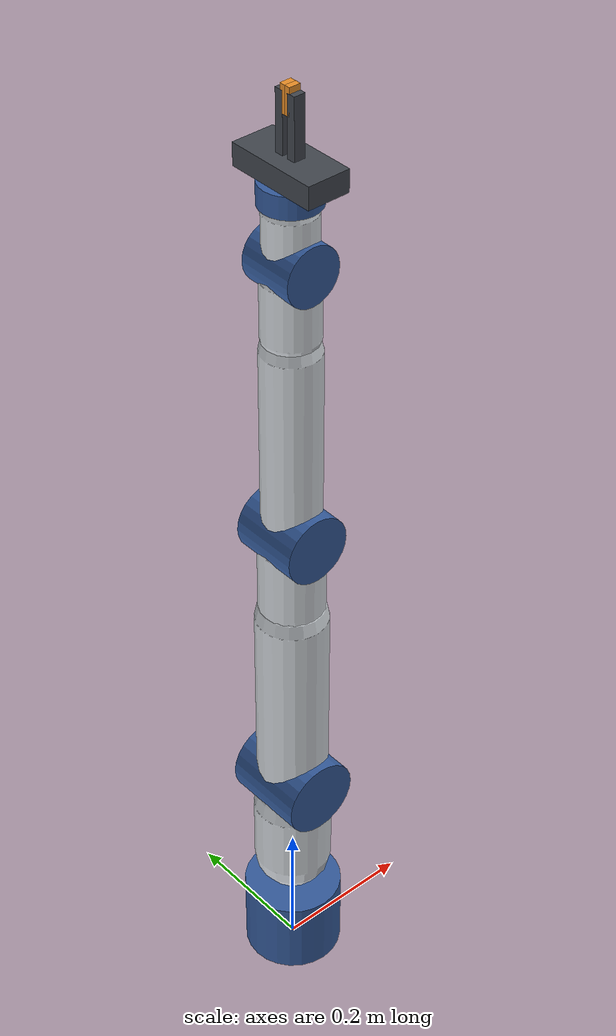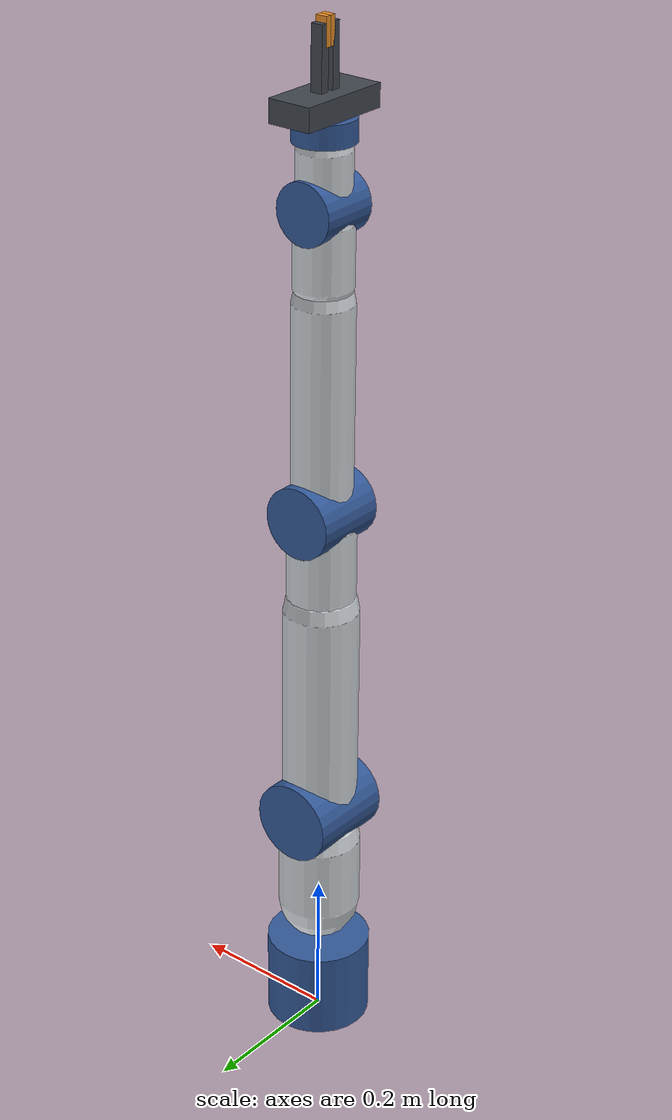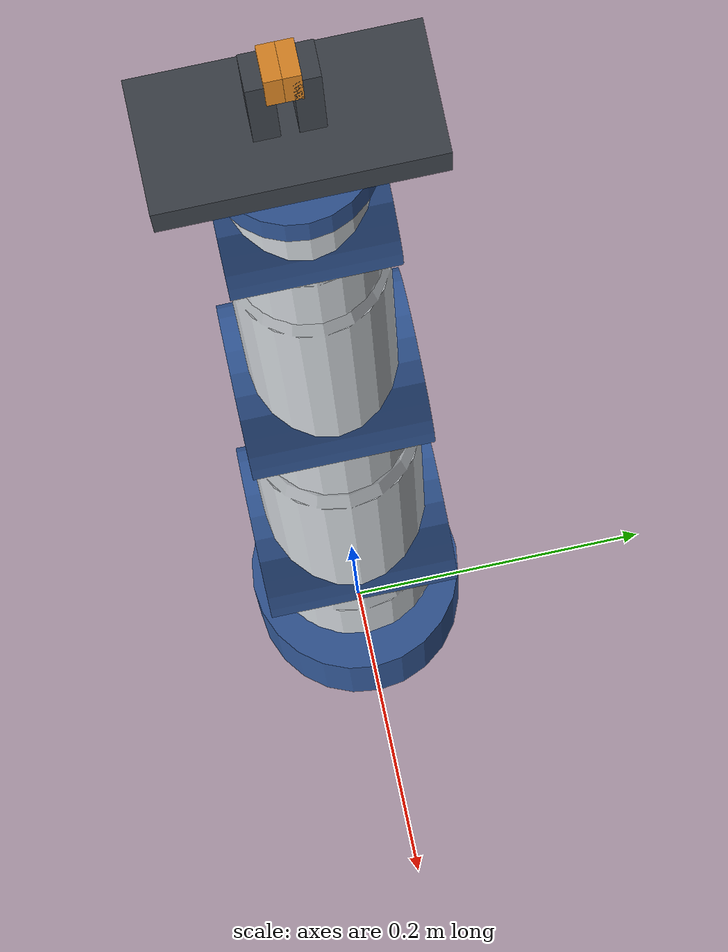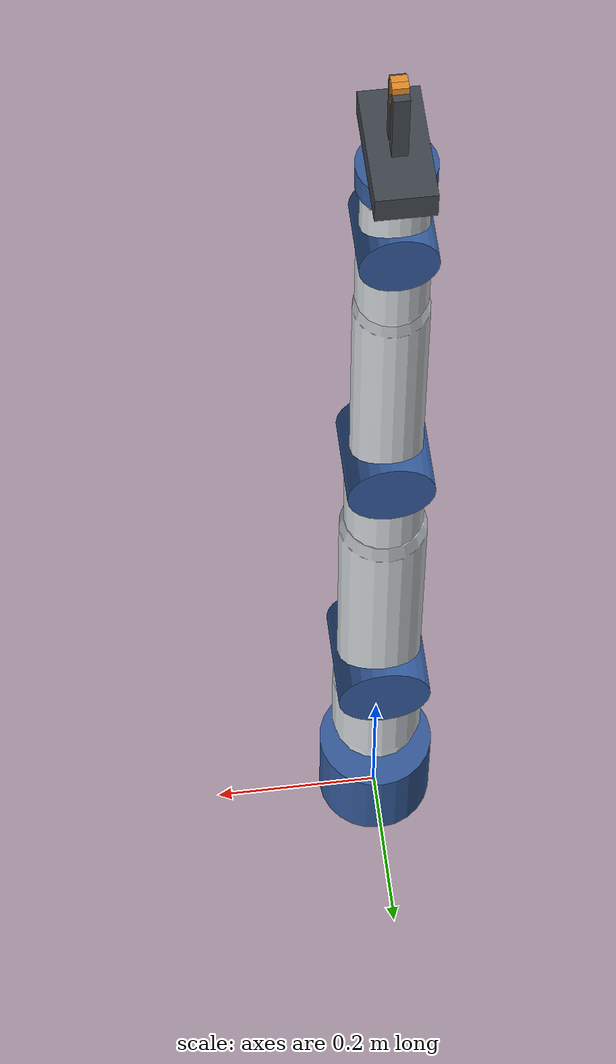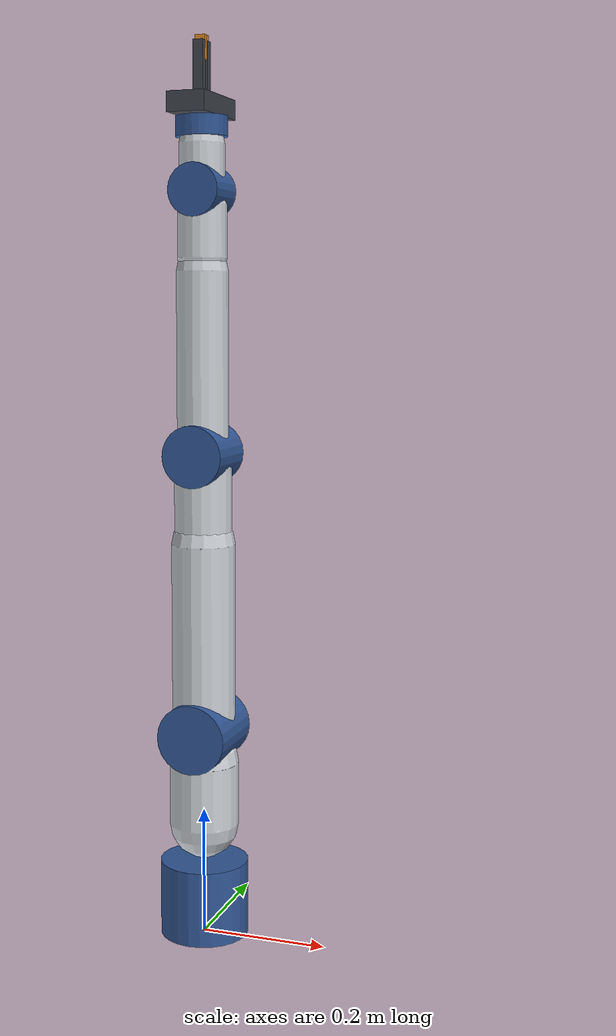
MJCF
<mujoco model="arm7_gripper">
  <compiler angle="radian"/>

  <default>
    <default class="arm7">
      <joint armature="0.05" damping="0.5"/>
      <geom type="capsule" group="2" rgba="0.82 0.84 0.86 1"/>
      <site group="3"/>
      <default class="arm7/accent">
        <geom rgba="0.2 0.35 0.6 1"/>
      </default>
    </default>
    <default class="gripper/main">
      <default class="gripper/gripper">
        <joint type="slide" range="0 0.04" armature="0.01" damping="2"/>
        <geom group="2" rgba="0.25 0.27 0.3 1"/>
        <default class="gripper/gripper/pad">
          <geom size="0.008 0.004 0.018" type="box" condim="4" priority="1" friction="1.5 0.02" rgba="0.9 0.55 0.15 1"/>
        </default>
      </default>
    </default>
  </default>

  <worldbody>
    <body name="link0" childclass="arm7">
      <geom name="base" class="arm7/accent" size="0.07 0.06" pos="0 0 0.06" quat="0 1 0 0" type="cylinder" mass="4"/>
      <body name="link1" pos="0 0 0.12">
        <joint name="j1" range="-2.9 2.9"/>
        <geom name="link1" size="0.055 0.05" pos="0 0 0.11" quat="0 1 0 0" mass="3"/>
        <body name="link2" pos="0 0 0.21">
          <joint name="j2" range="-1.8 1.8" axis="0 1 0"/>
          <geom name="link2_hub" class="arm7/accent" size="0.055 0.06" quat="0.707107 0.707107 0 0" type="cylinder" mass="1"/>
          <geom name="link2" size="0.05 0.15" pos="0 0 0.15" quat="0 1 0 0" mass="2.5"/>
          <body name="link3" pos="0 0 0.3">
            <joint name="j3" range="-2.9 2.9"/>
            <geom name="link3" size="0.045 0.05" pos="0 0 0.07" quat="0 1 0 0" mass="1.5"/>
            <body name="link4" pos="0 0 0.14">
              <joint name="j4" range="-0.1 2.9" axis="0 1 0"/>
              <geom name="link4_hub" class="arm7/accent" size="0.048 0.05" quat="0.707107 0.707107 0 0" type="cylinder" mass="0.8"/>
              <geom name="link4" size="0.04 0.14" pos="0 0 0.14" quat="0 1 0 0" mass="1.8"/>
              <body name="link5" pos="0 0 0.28">
                <joint name="j5" range="-2.9 2.9"/>
                <geom name="link5" size="0.038 0.04" pos="0 0 0.06" quat="0 1 0 0" mass="1"/>
                <body name="link6" pos="0 0 0.12">
                  <joint name="j6" range="-2.2 2.2" axis="0 1 0"/>
                  <geom name="link6_hub" class="arm7/accent" size="0.04 0.04" quat="0.707107 0.707107 0 0" type="cylinder" mass="0.5"/>
                  <geom name="link6" size="0.035 0.035" pos="0 0 0.035" quat="0 1 0 0" mass="0.6"/>
                  <body name="link7" pos="0 0 0.08">
                    <joint name="j7" range="-2.9 2.9"/>
                    <geom name="flange" class="arm7/accent" size="0.04 0.015" pos="0 0 0.015" quat="0 1 0 0" type="cylinder" mass="0.3"/>
                    <site name="flange" pos="0 0 0.03"/>
                    <site name="ee" size="0.01" pos="0 0 0.13" rgba="1 0.8 0 1"/>
                    <frame pos="0 0 0.03">
                      <body name="gripper/hand" childclass="gripper/gripper">
                        <geom name="gripper/palm" size="0.03 0.065 0.015" pos="0 0 0.015" type="box" mass="0.4"/>
                        <site name="gripper/tcp" size="0.008" pos="0 0 0.1" group="3" rgba="1 0.8 0 1"/>
                        <camera name="gripper/wrist" quat="0 0.707107 0.707107 0" pos="0.055 0 0.02" fovy="75"/>
                        <body name="gripper/finger_left" pos="0 0 0.03">
                          <joint name="gripper/finger_left" axis="0 1 0"/>
                          <geom name="gripper/finger_left" size="0.008 0.006 0.04" pos="0 0.01 0.04" type="box" mass="0.05"/>
                          <geom name="gripper/pad_left" class="gripper/gripper/pad" pos="0 0.004 0.07" mass="0.01"/>
                        </body>
                        <body name="gripper/finger_right" pos="0 0 0.03">
                          <joint name="gripper/finger_right" axis="0 -1 0"/>
                          <geom name="gripper/finger_right" size="0.008 0.006 0.04" pos="0 -0.01 0.04" type="box" mass="0.05"/>
                          <geom name="gripper/pad_right" class="gripper/gripper/pad" pos="0 -0.004 0.07" mass="0.01"/>
                        </body>
                      </body>
                    </frame>
                  </body>
                </body>
              </body>
            </body>
          </body>
        </body>
      </body>
    </body>
  </worldbody>

  <contact>
    <exclude body1="gripper/finger_left" body2="gripper/finger_right"/>
  </contact>

  <tendon>
    <fixed name="gripper/grip">
      <joint joint="gripper/finger_left" coef="0.5"/>
      <joint joint="gripper/finger_right" coef="0.5"/>
    </fixed>
  </tendon>

  <equality>
    <joint name="gripper/mirror" joint1="gripper/finger_left" joint2="gripper/finger_right" solref="0.005"/>
  </equality>

  <actuator>
    <general name="a1" joint="j1" ctrlrange="-80 80"/>
    <general name="a2" joint="j2" ctrlrange="-80 80"/>
    <general name="a3" joint="j3" ctrlrange="-60 60"/>
    <general name="a4" joint="j4" ctrlrange="-60 60"/>
    <general name="a5" joint="j5" ctrlrange="-20 20"/>
    <general name="a6" joint="j6" ctrlrange="-20 20"/>
    <general name="a7" joint="j7" ctrlrange="-10 10"/>
    <general name="gripper/grip" tendon="gripper/grip" ctrlrange="0 0.04" forcerange="-30 30" biastype="affine" gainprm="800" biasprm="0 -800 -20"/>
  </actuator>

  <sensor>
    <framepos objtype="site" objname="ee" name="ee_pos"/>
    <framequat objtype="site" objname="ee" name="ee_quat"/>

    <tendonpos tendon="gripper/grip" name="gripper/opening"/>

    <actuatorfrc actuator="gripper/grip" name="gripper/grip_force"/>
  </sensor>

  <keyframe>
    <key name="zero" qpos="0 0 0 0 0 0 0 0.04 0.04" ctrl="0 0 0 0 0 0 0 0.04"/>
    <key name="home" qpos="0 0.5 0 1.6 0 1.0416 0 0.04 0.04" ctrl="0 0 0 0 0 0 0 0.04"/>
  </keyframe>
</mujoco>
